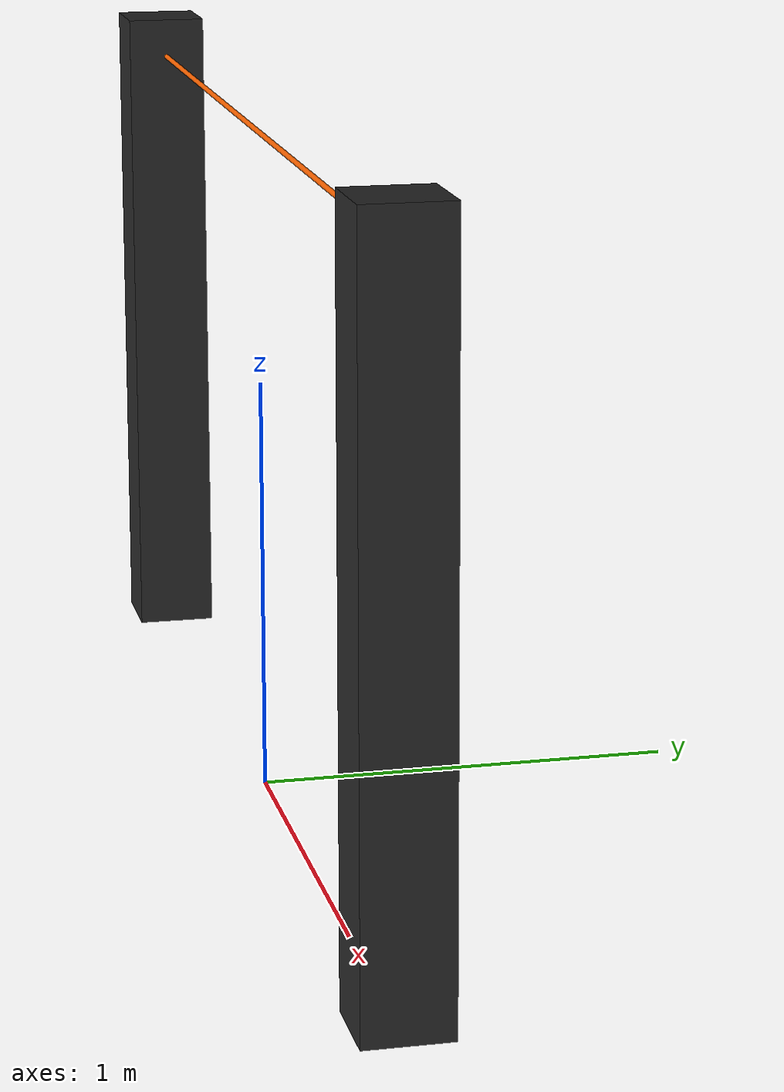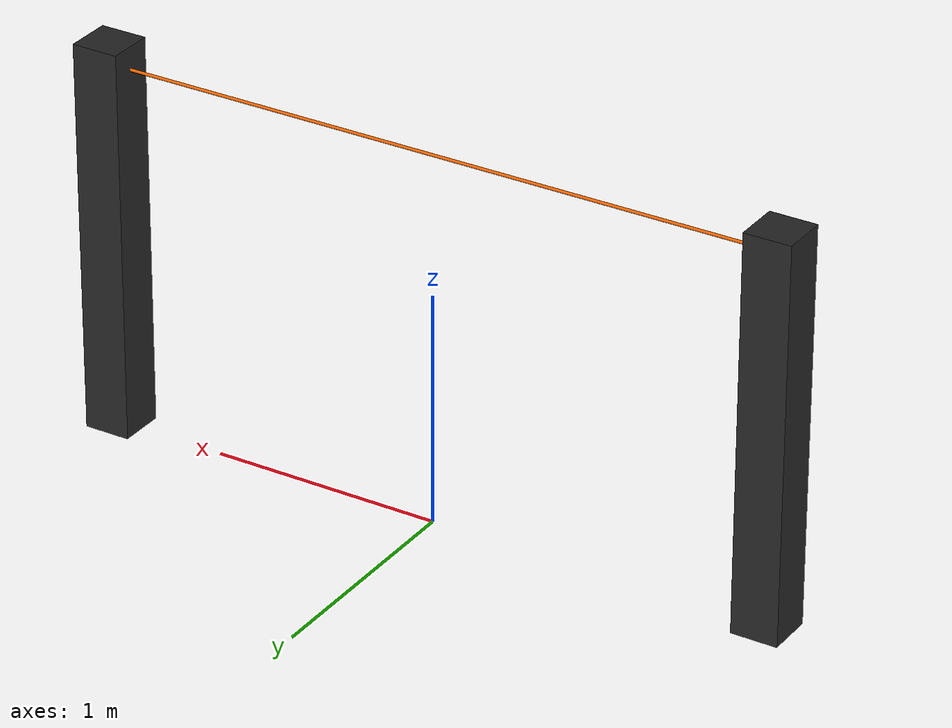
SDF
<?xml version='1.0' encoding='utf-8'?>
<sdf version='1.10'>
<model name='transmission_line'>
  <include merge='true'>
    <uri>models/hang_the_right_wire/transmission_line/hose</uri>
    <pose degrees='true'>0 0 1.6 0 90 0</pose>
  </include>
  <model name='pole1'>
    <include merge='true'><uri>models/hang_the_right_wire/transmission_line/pole</uri></include>
    <pose degrees='true'>-1.48 0 0.85 0 0 0</pose>
  </model>
  <model name='pole2'>
    <include merge='true'><uri>models/hang_the_right_wire/transmission_line/pole</uri></include>
    <pose degrees='true'>1.48 0 0.85 0 0 0</pose>
  </model>
  <enable_wind>false</enable_wind>
  <static>true</static>
</model>
</sdf>

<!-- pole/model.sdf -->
<sdf version='1.10'>
<model name='pole'>
  <link name='pole_link'>
    <enable_wind>false</enable_wind>
    <collision name='pole_collision'>
      <geometry><box><size>0.2 0.2 1.7</size></box></geometry>
      <surface>
        <friction><ode/></friction>
        <bounce/>
        <contact/>
      </surface>
    </collision>
    <visual name='pole_visual'>
      <geometry><box><size>0.2 0.2 1.7</size></box></geometry>
      <material>
        <diffuse>0.15 0.15 0.15 1</diffuse>
        <specular>1 1 1 1</specular>
      </material>
    </visual>
  </link>
  <self_collide>false</self_collide>
</model>
</sdf>

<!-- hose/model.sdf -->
<sdf version='1.10'>
<model name='hose'>
  <link name='hose_link'>
    <enable_wind>false</enable_wind>
    <collision name='hose_collision'>
      <geometry><cylinder>
        <radius>0.00635</radius>
        <length>3</length>
      </cylinder></geometry>
      <surface>
        <friction><ode/></friction>
        <bounce/>
        <contact/>
      </surface>
    </collision>
    <visual name='hose_visual'>
      <geometry><cylinder>
        <radius>0.00635</radius>
        <length>3</length>
      </cylinder></geometry>
      <!-- EDITAL -->
      <material><ambient>1 0.3984375 0</ambient><diffuse>1 0.3984375 0</diffuse><specular>1 0.3984375 0</specular></material>
      <!-- EDITAL -->

    </visual>
  </link>
  <self_collide>false</self_collide>
  <static>true</static>

</model>
</sdf>
